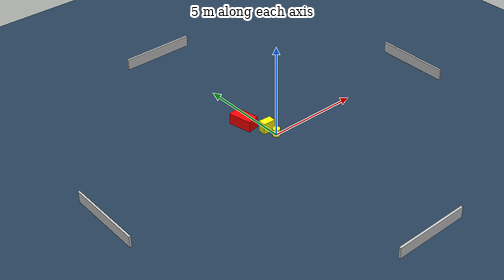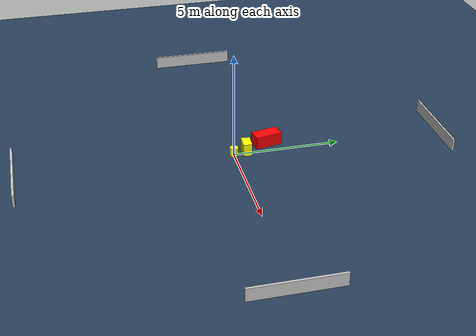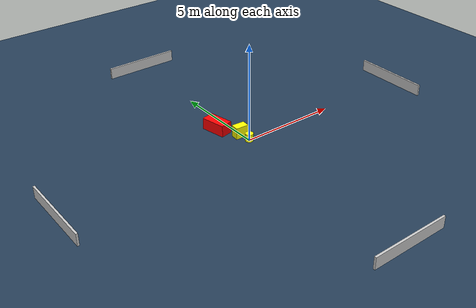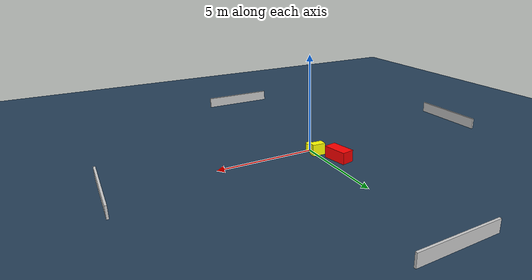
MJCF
<?xml version="1.0" ?>
<mujoco model="generated_environment">
  <option timestep="0.01" integrator="RK4" cone="elliptic"/>
  <default>
    <geom density="1"/>
  </default>
  <asset>
    <texture builtin="gradient" height="3072" name="skybox" rgb1="0.3 0.5 0.7" rgb2="0 0 0" type="skybox" width="512"/>
    <texture builtin="checker" height="300" name="groundplane" rgb1="0.2 0.3 0.4" rgb2="0.1 0.2 0.3" type="2d" width="300"/>
    <material name="groundplane" reflectance="0.2" texrepeat="5 5" texture="groundplane"/>
  </asset>
  <worldbody>
    <light dir="0 0 -1" directional="true" pos="0 0 1.5"/>
    <geom condim="3" friction="0.5 0.005 0.001" material="groundplane" name="floor" pos="0 0 0" size="0 0 0.05" type="plane"/>
    <body name="walls">
      <geom name="wall_1" condim="4" pos="-10.0 0.0 0.3" rgba="0.800000011920929 0.800000011920929 0.800000011920929 1.0" size="0.05 2.0 0.3" type="box"/>
      <geom name="wall_2" condim="4" pos="10.0 0.0 0.3" rgba="0.800000011920929 0.800000011920929 0.800000011920929 1.0" size="0.05 2.0 0.3" type="box"/>
      <geom name="wall_3" condim="4" pos="0.0 -10.0 0.3" rgba="0.800000011920929 0.800000011920929 0.800000011920929 1.0" size="2.0 0.05 0.3" type="box"/>
      <geom name="wall_4" condim="4" pos="0.0 10.0 0.3" rgba="0.800000011920929 0.800000011920929 0.800000011920929 1.0" size="2.0 0.05 0.3" type="box"/>
    </body>
    <body name="robot">
      <joint name="joint_x" type="slide" pos="0 0 0" axis="1 0 0"/>
      <joint name="joint_y" type="slide" pos="0 0 0" axis="0 1 0"/>
      <geom name="robot" type="cylinder" pos="0.0 0.0 0.2" size="0.2 0.2 0.0" mass="5.0" friction="1.0 0.005 0.0001" condim="4" rgba="1.0 1.0 0.0 1.0"/>
    </body>
    <body name="obstacle_1_movable">
      <geom name="obstacle_1_movable" condim="4" pos="-0.08651997144914249 0.6132722276716186 0.3" euler="0 0 356.28094674587317" friction="0.0 0.005 0.001" rgba="1.0 1.0 0.0 1.0" size="0.3386046917511552 0.2077268663976243 0.3" type="box" mass="0.1"/>
      <joint type="free"/>
    </body>
    <body name="obstacle_2_static">
      <geom name="obstacle_2_static" condim="4" pos="-0.6627333147127834 1.7224470540638015 0.3" euler="0 0 191.7092623858391" friction="0.0 0.005 0.001" rgba="1.0 0.0 0.0 1.0" size="0.32204268681768483 0.6405309401390316 0.3" type="box"/>
    </body>
  </worldbody>
  <actuator>
    <motor name="actuator_x" joint="joint_x" gear="1" ctrlrange="-1 1"/>
    <motor name="actuator_y" joint="joint_y" gear="1" ctrlrange="-1 1"/>
  </actuator>
</mujoco>
